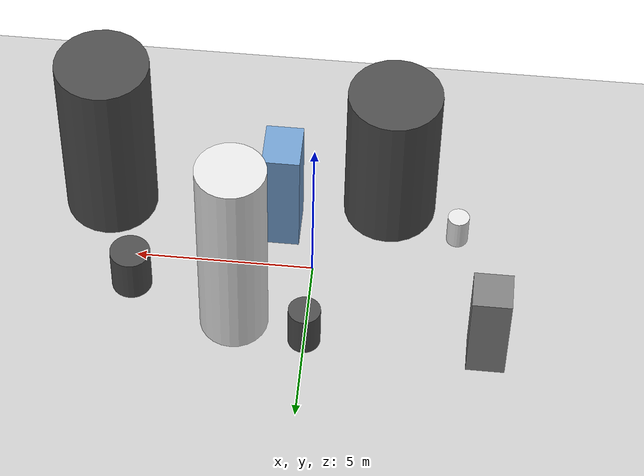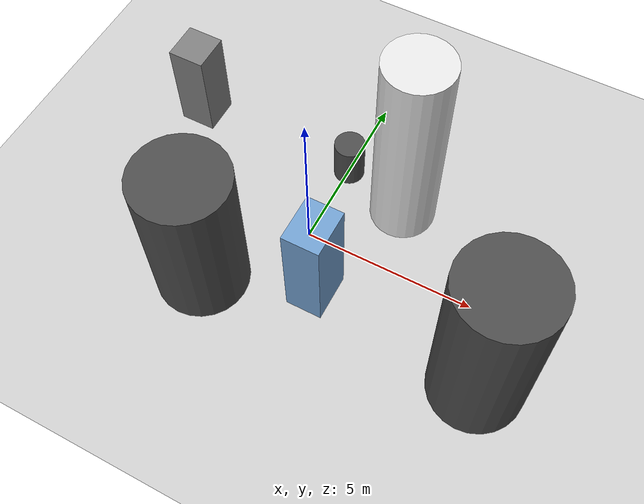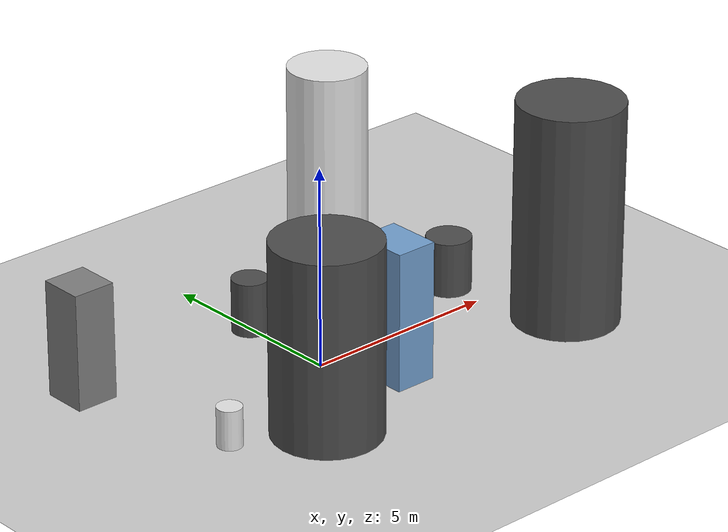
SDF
<?xml version='1.0'?>
<sdf version='1.6'>
  <world name='routeA_rl_v1__support_expansion__rl_train__mixed_3d_low_density_route__000133'>
    <!-- Sun light -->
    <light name='sun' type='directional'>
      <cast_shadows>1</cast_shadows>
      <pose>0 0 10 0 0 0</pose>
      <diffuse>0.8 0.8 0.8 1</diffuse>
      <specular>0.2 0.2 0.2 1</specular>
      <attenuation>
        <range>1000</range>
        <constant>0.9</constant>
        <linear>0.01</linear>
        <quadratic>0.001</quadratic>
      </attenuation>
      <direction>-0.5 0.1 -0.9</direction>
    </light>

    <!-- Ground plane -->
    <model name='ground_plane'>
      <static>1</static>
      <link name='link'>
        <collision name='collision'>
          <geometry>
            <plane>
              <normal>0 0 1</normal>
              <size>100 100</size>
            </plane>
          </geometry>
          <surface>
            <contact>
              <collide_bitmask>65535</collide_bitmask>
              <ode/>
            </contact>
            <friction>
              <ode>
                <mu>100</mu>
                <mu2>50</mu2>
              </ode>
              <torsional><ode/></torsional>
            </friction>
            <bounce/>
          </surface>
          <max_contacts>10</max_contacts>
        </collision>
        <visual name='visual'>
          <cast_shadows>0</cast_shadows>
          <geometry>
            <plane>
              <normal>0 0 1</normal>
              <size>100 100</size>
            </plane>
          </geometry>
          <material>
            <script>
              <uri>file://media/materials/scripts/gazebo.material</uri>
              <n>Gazebo/Grey</n>
            </script>
          </material>
        </visual>
      </link>
    </model>

    <!-- Environment -->
    <magnetic_field>6e-06 2.3e-05 -4.2e-05</magnetic_field>
    <atmosphere type='adiabatic'/>
    <physics name='default_physics' default='0' type='ode'>
      <gravity>0 0 -9.8</gravity>
      <max_step_size>0.004</max_step_size>
      <real_time_factor>1</real_time_factor>
      <real_time_update_rate>250</real_time_update_rate>
    </physics>
    <scene>
      <ambient>0.4 0.4 0.4 1</ambient>
      <background>0.7 0.7 0.7 1</background>
      <shadows>1</shadows>
    </scene>
    <wind/>
    <spherical_coordinates>
      <surface_model>EARTH_WGS84</surface_model>
      <latitude_deg>0</latitude_deg>
      <longitude_deg>0</longitude_deg>
      <elevation>0</elevation>
      <heading_deg>0</heading_deg>
    </spherical_coordinates>

    <!-- ============ OBSTACLES (8) ============ -->
    <model name='low_obs_0'>
      <static>1</static>
      <link name='link'>
        <visual name='visual'>
          <geometry>
            <cylinder>
              <radius>0.3047</radius>
              <length>0.9768</length>
            </cylinder>
          </geometry>
          <material>
            <script>
              <n>Gazebo/White</n>
              <uri>file://media/materials/scripts/gazebo.material</uri>
            </script>
            <ambient>0.9 0.9 0.9 1</ambient>
          </material>
        </visual>
        <collision name='collision'>
          <geometry>
            <cylinder>
              <radius>0.3047</radius>
              <length>0.9768</length>
            </cylinder>
          </geometry>
          <max_contacts>10</max_contacts>
          <surface>
            <contact><ode/></contact>
            <bounce/>
            <friction>
              <ode><mu>1</mu><mu2>1</mu2></ode>
              <torsional><ode/></torsional>
            </friction>
          </surface>
        </collision>
      </link>
      <pose>-4.0000 -1.5000 0.4884 0 0 0.0000</pose>
    </model>

    <model name='low_obs_1'>
      <static>1</static>
      <link name='link'>
        <visual name='visual'>
          <geometry>
            <cylinder>
              <radius>0.4498</radius>
              <length>1.3563</length>
            </cylinder>
          </geometry>
          <material>
            <script>
              <n>Gazebo/DarkGrey</n>
              <uri>file://media/materials/scripts/gazebo.material</uri>
            </script>
            <ambient>0.3 0.3 0.3 1</ambient>
          </material>
        </visual>
        <collision name='collision'>
          <geometry>
            <cylinder>
              <radius>0.4498</radius>
              <length>1.3563</length>
            </cylinder>
          </geometry>
          <max_contacts>10</max_contacts>
          <surface>
            <contact><ode/></contact>
            <bounce/>
            <friction>
              <ode><mu>1</mu><mu2>1</mu2></ode>
              <torsional><ode/></torsional>
            </friction>
          </surface>
        </collision>
      </link>
      <pose>0.0000 2.5000 0.6782 0 0 0.0000</pose>
    </model>

    <model name='low_obs_2'>
      <static>1</static>
      <link name='link'>
        <visual name='visual'>
          <geometry>
            <cylinder>
              <radius>0.5634</radius>
              <length>1.3949</length>
            </cylinder>
          </geometry>
          <material>
            <script>
              <n>Gazebo/DarkGrey</n>
              <uri>file://media/materials/scripts/gazebo.material</uri>
            </script>
            <ambient>0.3 0.3 0.3 1</ambient>
          </material>
        </visual>
        <collision name='collision'>
          <geometry>
            <cylinder>
              <radius>0.5634</radius>
              <length>1.3949</length>
            </cylinder>
          </geometry>
          <max_contacts>10</max_contacts>
          <surface>
            <contact><ode/></contact>
            <bounce/>
            <friction>
              <ode><mu>1</mu><mu2>1</mu2></ode>
              <torsional><ode/></torsional>
            </friction>
          </surface>
        </collision>
      </link>
      <pose>5.0000 1.0000 0.6975 0 0 0.0000</pose>
    </model>

    <model name='tall_obs_0'>
      <static>1</static>
      <link name='link'>
        <visual name='visual'>
          <geometry>
            <cylinder>
              <radius>1.3159</radius>
              <length>4.7590</length>
            </cylinder>
          </geometry>
          <material>
            <script>
              <n>Gazebo/DarkGrey</n>
              <uri>file://media/materials/scripts/gazebo.material</uri>
            </script>
            <ambient>0.3 0.3 0.3 1</ambient>
          </material>
        </visual>
        <collision name='collision'>
          <geometry>
            <cylinder>
              <radius>1.3159</radius>
              <length>4.7590</length>
            </cylinder>
          </geometry>
          <max_contacts>10</max_contacts>
          <surface>
            <contact><ode/></contact>
            <bounce/>
            <friction>
              <ode><mu>1</mu><mu2>1</mu2></ode>
              <torsional><ode/></torsional>
            </friction>
          </surface>
        </collision>
      </link>
      <pose>-2.0000 -2.5000 2.3795 0 0 0.0000</pose>
    </model>

    <model name='tall_obs_1'>
      <static>1</static>
      <link name='link'>
        <visual name='visual'>
          <geometry>
            <cylinder>
              <radius>0.9513</radius>
              <length>6.3373</length>
            </cylinder>
          </geometry>
          <material>
            <script>
              <n>Gazebo/White</n>
              <uri>file://media/materials/scripts/gazebo.material</uri>
            </script>
            <ambient>0.9 0.9 0.9 1</ambient>
          </material>
        </visual>
        <collision name='collision'>
          <geometry>
            <cylinder>
              <radius>0.9513</radius>
              <length>6.3373</length>
            </cylinder>
          </geometry>
          <max_contacts>10</max_contacts>
          <surface>
            <contact><ode/></contact>
            <bounce/>
            <friction>
              <ode><mu>1</mu><mu2>1</mu2></ode>
              <torsional><ode/></torsional>
            </friction>
          </surface>
        </collision>
      </link>
      <pose>2.0000 2.0000 3.1687 0 0 0.0000</pose>
    </model>

    <model name='tall_obs_2'>
      <static>1</static>
      <link name='link'>
        <visual name='visual'>
          <geometry>
            <cylinder>
              <radius>1.3125</radius>
              <length>5.6137</length>
            </cylinder>
          </geometry>
          <material>
            <script>
              <n>Gazebo/DarkGrey</n>
              <uri>file://media/materials/scripts/gazebo.material</uri>
            </script>
            <ambient>0.3 0.3 0.3 1</ambient>
          </material>
        </visual>
        <collision name='collision'>
          <geometry>
            <cylinder>
              <radius>1.3125</radius>
              <length>5.6137</length>
            </cylinder>
          </geometry>
          <max_contacts>10</max_contacts>
          <surface>
            <contact><ode/></contact>
            <bounce/>
            <friction>
              <ode><mu>1</mu><mu2>1</mu2></ode>
              <torsional><ode/></torsional>
            </friction>
          </surface>
        </collision>
      </link>
      <pose>6.0000 -2.0000 2.8069 0 0 0.0000</pose>
    </model>

    <model name='med_obs_0'>
      <static>1</static>
      <link name='link'>
        <visual name='visual'>
          <geometry>
            <box>
              <size>1.0656 1.1000 2.8930</size>
            </box>
          </geometry>
          <material>
            <script>
              <n>Gazebo/Grey</n>
              <uri>file://media/materials/scripts/gazebo.material</uri>
            </script>
            <ambient>0.5 0.5 0.5 1</ambient>
          </material>
        </visual>
        <collision name='collision'>
          <geometry>
            <box>
              <size>1.0656 1.1000 2.8930</size>
            </box>
          </geometry>
          <max_contacts>10</max_contacts>
          <surface>
            <contact><ode/></contact>
            <bounce/>
            <friction>
              <ode><mu>1</mu><mu2>1</mu2></ode>
              <torsional><ode/></torsional>
            </friction>
          </surface>
        </collision>
      </link>
      <pose>-5.0000 2.5000 1.4465 0 0 0.0000</pose>
    </model>

    <model name='med_obs_1'>
      <static>1</static>
      <link name='link'>
        <visual name='visual'>
          <geometry>
            <box>
              <size>1.0544 1.3539 3.4619</size>
            </box>
          </geometry>
          <material>
            <script>
              <n>Gazebo/Blue</n>
              <uri>file://media/materials/scripts/gazebo.material</uri>
            </script>
            <ambient>0.447 0.624 0.812 1</ambient>
          </material>
        </visual>
        <collision name='collision'>
          <geometry>
            <box>
              <size>1.0544 1.3539 3.4619</size>
            </box>
          </geometry>
          <max_contacts>10</max_contacts>
          <surface>
            <contact><ode/></contact>
            <bounce/>
            <friction>
              <ode><mu>1</mu><mu2>1</mu2></ode>
              <torsional><ode/></torsional>
            </friction>
          </surface>
        </collision>
      </link>
      <pose>1.0000 -1.5000 1.7309 0 0 0.0000</pose>
    </model>

    <!-- GUI camera -->
    <gui fullscreen='0'>
      <camera name='user_camera'>
        <pose>-15 0 18 0 0.85 0.15</pose>
        <view_controller>orbit</view_controller>
        <projection_type>perspective</projection_type>
      </camera>
    </gui>
  </world>
</sdf>
